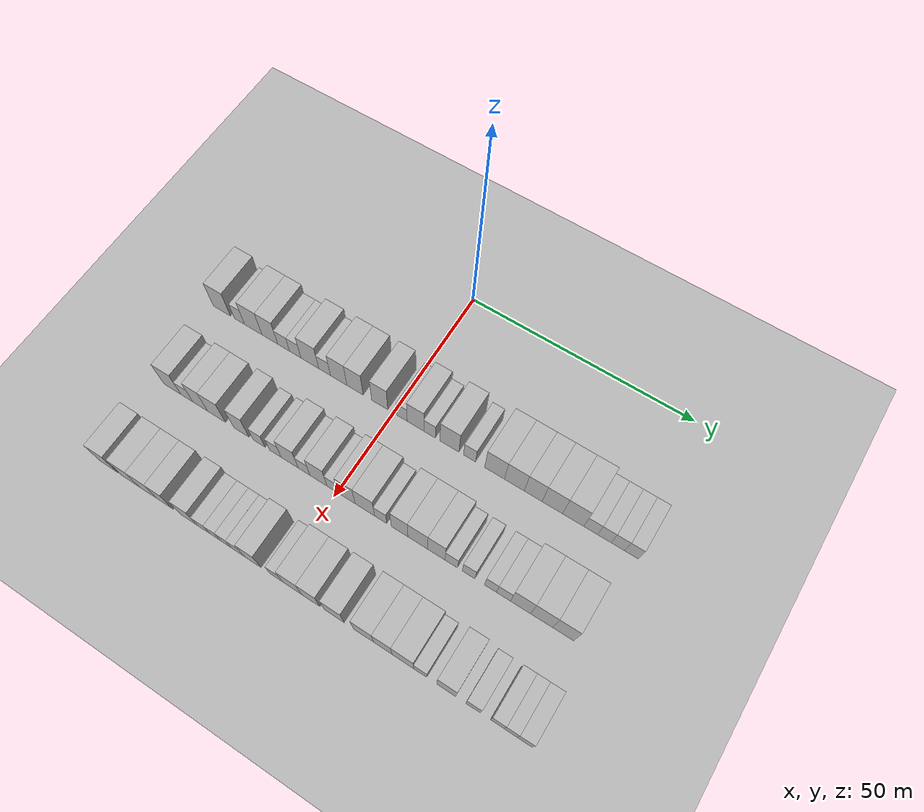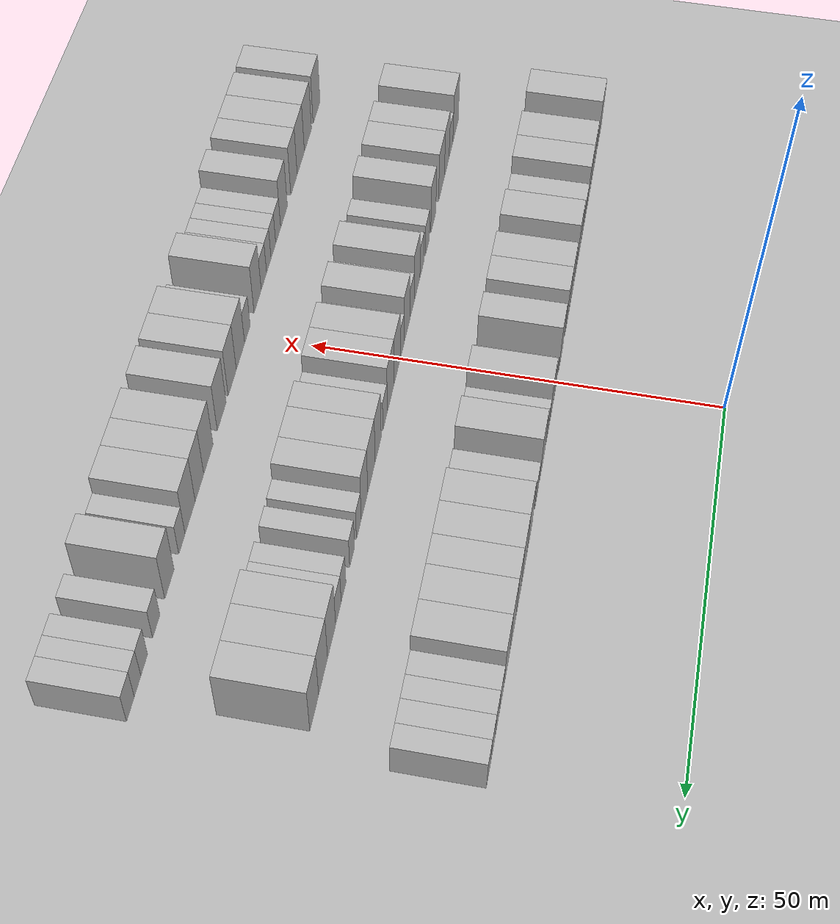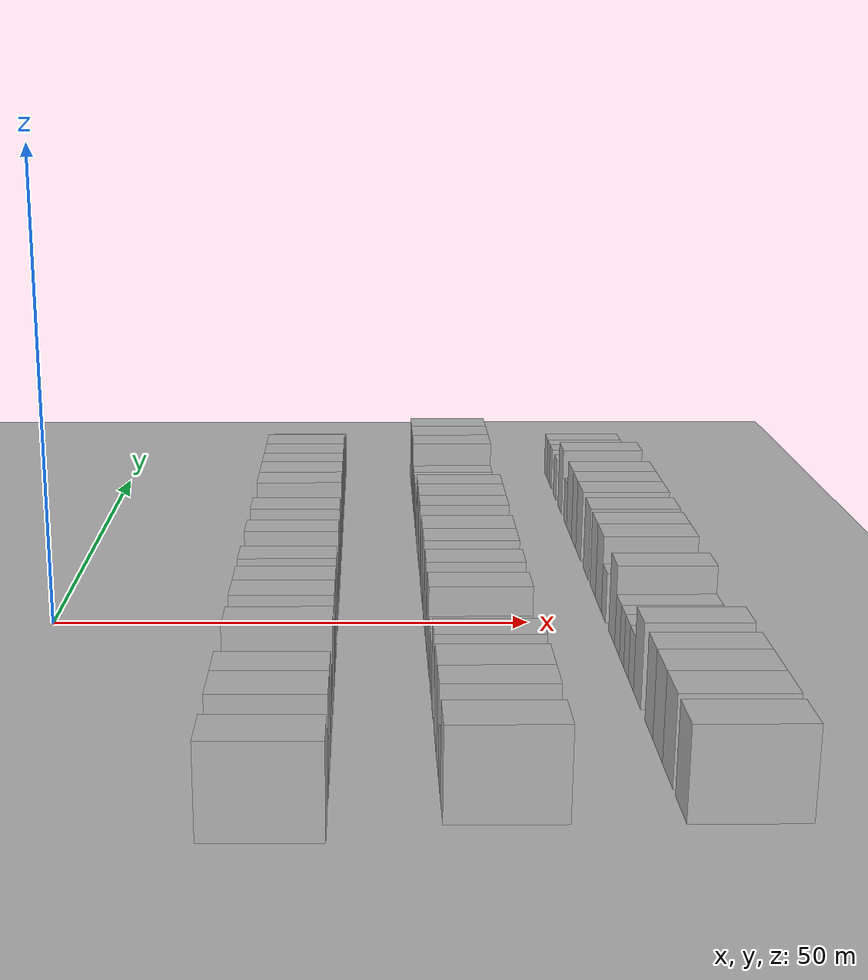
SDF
<sdf version="1.6">
 <world name="default">
  <include><name>ground_plane_1</name><uri>model://HANNAS_ground_plane</uri></include>
  <include>
   <name>ground_plane_2</name>
   <uri>model://HANNAS_ground_plane</uri>
   <pose>100 0 0  0 0 0</pose>
  </include>
  <model name="building_49">
   <static>1</static>
   <pose>25.0000 -41.4248 0 0.000000 0.000000 0.000000</pose>
   <link name="link">
    <pose>0 0 4.50 0 0 0</pose>
    <collision name="collision"><geometry><box><size>10.0000 4.3678 9.0000</size></box></geometry></collision>
    <visual name="visual">
     <cast_shadows>0</cast_shadows>
     <geometry><box><size>10.0000 4.3678 9.0000</size></box></geometry>
     <material>
      <script>
       <uri>model://HANNAS_wall/materials/scripts</uri>
       <uri>model://HANNAS_wall/materials/textures</uri>
       <name>vrc/HANNAS_wall</name>
      </script>
     </material>
    </visual>
   </link>
  </model>
  <model name="building_50">
   <static>1</static>
   <pose>25.0000 -36.9635 0 0.000000 0.000000 0.000000</pose>
   <link name="link">
    <pose>0 0 3.00 0 0 0</pose>
    <collision name="collision"><geometry><box><size>10.0000 2.5547 6.0000</size></box></geometry></collision>
    <visual name="visual">
     <cast_shadows>0</cast_shadows>
     <geometry><box><size>10.0000 2.5547 6.0000</size></box></geometry>
     <material>
      <script>
       <uri>model://HANNAS_wall/materials/scripts</uri>
       <uri>model://HANNAS_wall/materials/textures</uri>
       <name>vrc/HANNAS_wall</name>
      </script>
     </material>
    </visual>
   </link>
  </model>
  <model name="building_51">
   <static>1</static>
   <pose>25.0000 -33.5015 0 0.000000 0.000000 0.000000</pose>
   <link name="link">
    <pose>0 0 4.50 0 0 0</pose>
    <collision name="collision"><geometry><box><size>10.0000 4.3692 9.0000</size></box></geometry></collision>
    <visual name="visual">
     <cast_shadows>0</cast_shadows>
     <geometry><box><size>10.0000 4.3692 9.0000</size></box></geometry>
     <material>
      <script>
       <uri>model://HANNAS_wall/materials/scripts</uri>
       <uri>model://HANNAS_wall/materials/textures</uri>
       <name>vrc/HANNAS_wall</name>
      </script>
     </material>
    </visual>
   </link>
  </model>
  <model name="building_52">
   <static>1</static>
   <pose>25.0000 -29.3595 0 0.000000 0.000000 0.000000</pose>
   <link name="link">
    <pose>0 0 4.50 0 0 0</pose>
    <collision name="collision"><geometry><box><size>10.0000 3.9149 9.0000</size></box></geometry></collision>
    <visual name="visual">
     <cast_shadows>0</cast_shadows>
     <geometry><box><size>10.0000 3.9149 9.0000</size></box></geometry>
     <material>
      <script>
       <uri>model://HANNAS_wall/materials/scripts</uri>
       <uri>model://HANNAS_wall/materials/textures</uri>
       <name>vrc/HANNAS_wall</name>
      </script>
     </material>
    </visual>
   </link>
  </model>
  <model name="building_53">
   <static>1</static>
   <pose>25.0000 -25.9612 0 0.000000 0.000000 0.000000</pose>
   <link name="link">
    <pose>0 0 3.00 0 0 0</pose>
    <collision name="collision"><geometry><box><size>10.0000 2.8816 6.0000</size></box></geometry></collision>
    <visual name="visual">
     <cast_shadows>0</cast_shadows>
     <geometry><box><size>10.0000 2.8816 6.0000</size></box></geometry>
     <material>
      <script>
       <uri>model://HANNAS_wall/materials/scripts</uri>
       <uri>model://HANNAS_wall/materials/textures</uri>
       <name>vrc/HANNAS_wall</name>
      </script>
     </material>
    </visual>
   </link>
  </model>
  <model name="building_54">
   <static>1</static>
   <pose>25.0000 -23.1204 0 0.000000 0.000000 0.000000</pose>
   <link name="link">
    <pose>0 0 3.00 0 0 0</pose>
    <collision name="collision"><geometry><box><size>10.0000 2.8000 6.0000</size></box></geometry></collision>
    <visual name="visual">
     <cast_shadows>0</cast_shadows>
     <geometry><box><size>10.0000 2.8000 6.0000</size></box></geometry>
     <material>
      <script>
       <uri>model://HANNAS_wall/materials/scripts</uri>
       <uri>model://HANNAS_wall/materials/textures</uri>
       <name>vrc/HANNAS_wall</name>
      </script>
     </material>
    </visual>
   </link>
  </model>
  <model name="building_55">
   <static>1</static>
   <pose>25.0000 -19.5731 0 0.000000 0.000000 0.000000</pose>
   <link name="link">
    <pose>0 0 4.50 0 0 0</pose>
    <collision name="collision"><geometry><box><size>10.0000 4.2946 9.0000</size></box></geometry></collision>
    <visual name="visual">
     <cast_shadows>0</cast_shadows>
     <geometry><box><size>10.0000 4.2946 9.0000</size></box></geometry>
     <material>
      <script>
       <uri>model://HANNAS_wall/materials/scripts</uri>
       <uri>model://HANNAS_wall/materials/textures</uri>
       <name>vrc/HANNAS_wall</name>
      </script>
     </material>
    </visual>
   </link>
  </model>
  <model name="building_56">
   <static>1</static>
   <pose>25.0000 -16.0325 0 0.000000 0.000000 0.000000</pose>
   <link name="link">
    <pose>0 0 3.00 0 0 0</pose>
    <collision name="collision"><geometry><box><size>10.0000 2.7866 6.0000</size></box></geometry></collision>
    <visual name="visual">
     <cast_shadows>0</cast_shadows>
     <geometry><box><size>10.0000 2.7866 6.0000</size></box></geometry>
     <material>
      <script>
       <uri>model://HANNAS_wall/materials/scripts</uri>
       <uri>model://HANNAS_wall/materials/textures</uri>
       <name>vrc/HANNAS_wall</name>
      </script>
     </material>
    </visual>
   </link>
  </model>
  <model name="building_57">
   <static>1</static>
   <pose>25.0000 -12.6746 0 0.000000 0.000000 0.000000</pose>
   <link name="link">
    <pose>0 0 4.50 0 0 0</pose>
    <collision name="collision"><geometry><box><size>10.0000 3.9293 9.0000</size></box></geometry></collision>
    <visual name="visual">
     <cast_shadows>0</cast_shadows>
     <geometry><box><size>10.0000 3.9293 9.0000</size></box></geometry>
     <material>
      <script>
       <uri>model://HANNAS_wall/materials/scripts</uri>
       <uri>model://HANNAS_wall/materials/textures</uri>
       <name>vrc/HANNAS_wall</name>
      </script>
     </material>
    </visual>
   </link>
  </model>
  <model name="building_58">
   <static>1</static>
   <pose>25.0000 -8.8036 0 0.000000 0.000000 0.000000</pose>
   <link name="link">
    <pose>0 0 4.50 0 0 0</pose>
    <collision name="collision"><geometry><box><size>10.0000 3.8127 9.0000</size></box></geometry></collision>
    <visual name="visual">
     <cast_shadows>0</cast_shadows>
     <geometry><box><size>10.0000 3.8127 9.0000</size></box></geometry>
     <material>
      <script>
       <uri>model://HANNAS_wall/materials/scripts</uri>
       <uri>model://HANNAS_wall/materials/textures</uri>
       <name>vrc/HANNAS_wall</name>
      </script>
     </material>
    </visual>
   </link>
  </model>
  <model name="building_59">
   <static>1</static>
   <pose>25.0000 -3.0187 0 0.000000 0.000000 0.000000</pose>
   <link name="link">
    <pose>0 0 4.50 0 0 0</pose>
    <collision name="collision"><geometry><box><size>10.0000 3.7571 9.0000</size></box></geometry></collision>
    <visual name="visual">
     <cast_shadows>0</cast_shadows>
     <geometry><box><size>10.0000 3.7571 9.0000</size></box></geometry>
     <material>
      <script>
       <uri>model://HANNAS_wall/materials/scripts</uri>
       <uri>model://HANNAS_wall/materials/textures</uri>
       <name>vrc/HANNAS_wall</name>
      </script>
     </material>
    </visual>
   </link>
  </model>
  <model name="building_60">
   <static>1</static>
   <pose>25.0000 2.0747 0 0.000000 0.000000 0.000000</pose>
   <link name="link">
    <pose>0 0 3.00 0 0 0</pose>
    <collision name="collision"><geometry><box><size>10.0000 2.4297 6.0000</size></box></geometry></collision>
    <visual name="visual">
     <cast_shadows>0</cast_shadows>
     <geometry><box><size>10.0000 2.4297 6.0000</size></box></geometry>
     <material>
      <script>
       <uri>model://HANNAS_wall/materials/scripts</uri>
       <uri>model://HANNAS_wall/materials/textures</uri>
       <name>vrc/HANNAS_wall</name>
      </script>
     </material>
    </visual>
   </link>
  </model>
  <model name="building_61">
   <static>1</static>
   <pose>25.0000 5.1758 0 0.000000 0.000000 0.000000</pose>
   <link name="link">
    <pose>0 0 4.50 0 0 0</pose>
    <collision name="collision"><geometry><box><size>10.0000 3.7725 9.0000</size></box></geometry></collision>
    <visual name="visual">
     <cast_shadows>0</cast_shadows>
     <geometry><box><size>10.0000 3.7725 9.0000</size></box></geometry>
     <material>
      <script>
       <uri>model://HANNAS_wall/materials/scripts</uri>
       <uri>model://HANNAS_wall/materials/textures</uri>
       <name>vrc/HANNAS_wall</name>
      </script>
     </material>
    </visual>
   </link>
  </model>
  <model name="building_62">
   <static>1</static>
   <pose>25.0000 8.3747 0 0.000000 0.000000 0.000000</pose>
   <link name="link">
    <pose>0 0 3.00 0 0 0</pose>
    <collision name="collision"><geometry><box><size>10.0000 2.6254 6.0000</size></box></geometry></collision>
    <visual name="visual">
     <cast_shadows>0</cast_shadows>
     <geometry><box><size>10.0000 2.6254 6.0000</size></box></geometry>
     <material>
      <script>
       <uri>model://HANNAS_wall/materials/scripts</uri>
       <uri>model://HANNAS_wall/materials/textures</uri>
       <name>vrc/HANNAS_wall</name>
      </script>
     </material>
    </visual>
   </link>
  </model>
  <model name="building_63">
   <static>1</static>
   <pose>25.0000 12.8295 0 0.000000 0.000000 0.000000</pose>
   <link name="link">
    <pose>0 0 4.50 0 0 0</pose>
    <collision name="collision"><geometry><box><size>10.0000 4.2841 9.0000</size></box></geometry></collision>
    <visual name="visual">
     <cast_shadows>0</cast_shadows>
     <geometry><box><size>10.0000 4.2841 9.0000</size></box></geometry>
     <material>
      <script>
       <uri>model://HANNAS_wall/materials/scripts</uri>
       <uri>model://HANNAS_wall/materials/textures</uri>
       <name>vrc/HANNAS_wall</name>
      </script>
     </material>
    </visual>
   </link>
  </model>
  <model name="building_64">
   <static>1</static>
   <pose>25.0000 17.3083 0 0.000000 0.000000 0.000000</pose>
   <link name="link">
    <pose>0 0 3.00 0 0 0</pose>
    <collision name="collision"><geometry><box><size>10.0000 2.6735 6.0000</size></box></geometry></collision>
    <visual name="visual">
     <cast_shadows>0</cast_shadows>
     <geometry><box><size>10.0000 2.6735 6.0000</size></box></geometry>
     <material>
      <script>
       <uri>model://HANNAS_wall/materials/scripts</uri>
       <uri>model://HANNAS_wall/materials/textures</uri>
       <name>vrc/HANNAS_wall</name>
      </script>
     </material>
    </visual>
   </link>
  </model>
  <model name="building_65">
   <static>1</static>
   <pose>25.0000 22.8115 0 0.000000 0.000000 0.000000</pose>
   <link name="link">
    <pose>0 0 4.50 0 0 0</pose>
    <collision name="collision"><geometry><box><size>10.0000 4.3328 9.0000</size></box></geometry></collision>
    <visual name="visual">
     <cast_shadows>0</cast_shadows>
     <geometry><box><size>10.0000 4.3328 9.0000</size></box></geometry>
     <material>
      <script>
       <uri>model://HANNAS_wall/materials/scripts</uri>
       <uri>model://HANNAS_wall/materials/textures</uri>
       <name>vrc/HANNAS_wall</name>
      </script>
     </material>
    </visual>
   </link>
  </model>
  <model name="building_66">
   <static>1</static>
   <pose>25.0000 27.1221 0 0.000000 0.000000 0.000000</pose>
   <link name="link">
    <pose>0 0 4.50 0 0 0</pose>
    <collision name="collision"><geometry><box><size>10.0000 4.2884 9.0000</size></box></geometry></collision>
    <visual name="visual">
     <cast_shadows>0</cast_shadows>
     <geometry><box><size>10.0000 4.2884 9.0000</size></box></geometry>
     <material>
      <script>
       <uri>model://HANNAS_wall/materials/scripts</uri>
       <uri>model://HANNAS_wall/materials/textures</uri>
       <name>vrc/HANNAS_wall</name>
      </script>
     </material>
    </visual>
   </link>
  </model>
  <model name="building_67">
   <static>1</static>
   <pose>25.0000 31.1774 0 0.000000 0.000000 0.000000</pose>
   <link name="link">
    <pose>0 0 4.50 0 0 0</pose>
    <collision name="collision"><geometry><box><size>10.0000 3.8222 9.0000</size></box></geometry></collision>
    <visual name="visual">
     <cast_shadows>0</cast_shadows>
     <geometry><box><size>10.0000 3.8222 9.0000</size></box></geometry>
     <material>
      <script>
       <uri>model://HANNAS_wall/materials/scripts</uri>
       <uri>model://HANNAS_wall/materials/textures</uri>
       <name>vrc/HANNAS_wall</name>
      </script>
     </material>
    </visual>
   </link>
  </model>
  <model name="building_68">
   <static>1</static>
   <pose>25.0000 35.2563 0 0.000000 0.000000 0.000000</pose>
   <link name="link">
    <pose>0 0 4.50 0 0 0</pose>
    <collision name="collision"><geometry><box><size>10.0000 4.3356 9.0000</size></box></geometry></collision>
    <visual name="visual">
     <cast_shadows>0</cast_shadows>
     <geometry><box><size>10.0000 4.3356 9.0000</size></box></geometry>
     <material>
      <script>
       <uri>model://HANNAS_wall/materials/scripts</uri>
       <uri>model://HANNAS_wall/materials/textures</uri>
       <name>vrc/HANNAS_wall</name>
      </script>
     </material>
    </visual>
   </link>
  </model>
  <model name="building_69">
   <static>1</static>
   <pose>25.0000 39.6398 0 0.000000 0.000000 0.000000</pose>
   <link name="link">
    <pose>0 0 4.50 0 0 0</pose>
    <collision name="collision"><geometry><box><size>10.0000 4.4315 9.0000</size></box></geometry></collision>
    <visual name="visual">
     <cast_shadows>0</cast_shadows>
     <geometry><box><size>10.0000 4.4315 9.0000</size></box></geometry>
     <material>
      <script>
       <uri>model://HANNAS_wall/materials/scripts</uri>
       <uri>model://HANNAS_wall/materials/textures</uri>
       <name>vrc/HANNAS_wall</name>
      </script>
     </material>
    </visual>
   </link>
  </model>
  <model name="building_70">
   <static>1</static>
   <pose>25.0000 43.2824 0 0.000000 0.000000 0.000000</pose>
   <link name="link">
    <pose>0 0 3.00 0 0 0</pose>
    <collision name="collision"><geometry><box><size>10.0000 2.8536 6.0000</size></box></geometry></collision>
    <visual name="visual">
     <cast_shadows>0</cast_shadows>
     <geometry><box><size>10.0000 2.8536 6.0000</size></box></geometry>
     <material>
      <script>
       <uri>model://HANNAS_wall/materials/scripts</uri>
       <uri>model://HANNAS_wall/materials/textures</uri>
       <name>vrc/HANNAS_wall</name>
      </script>
     </material>
    </visual>
   </link>
  </model>
  <model name="building_71">
   <static>1</static>
   <pose>25.0000 46.0949 0 0.000000 0.000000 0.000000</pose>
   <link name="link">
    <pose>0 0 3.00 0 0 0</pose>
    <collision name="collision"><geometry><box><size>10.0000 2.7713 6.0000</size></box></geometry></collision>
    <visual name="visual">
     <cast_shadows>0</cast_shadows>
     <geometry><box><size>10.0000 2.7713 6.0000</size></box></geometry>
     <material>
      <script>
       <uri>model://HANNAS_wall/materials/scripts</uri>
       <uri>model://HANNAS_wall/materials/textures</uri>
       <name>vrc/HANNAS_wall</name>
      </script>
     </material>
    </visual>
   </link>
  </model>
  <model name="building_72">
   <static>1</static>
   <pose>25.0000 48.8805 0 0.000000 0.000000 0.000000</pose>
   <link name="link">
    <pose>0 0 3.00 0 0 0</pose>
    <collision name="collision"><geometry><box><size>10.0000 2.8001 6.0000</size></box></geometry></collision>
    <visual name="visual">
     <cast_shadows>0</cast_shadows>
     <geometry><box><size>10.0000 2.8001 6.0000</size></box></geometry>
     <material>
      <script>
       <uri>model://HANNAS_wall/materials/scripts</uri>
       <uri>model://HANNAS_wall/materials/textures</uri>
       <name>vrc/HANNAS_wall</name>
      </script>
     </material>
    </visual>
   </link>
  </model>
  <model name="building_73">
   <static>1</static>
   <pose>25.0000 51.6680 0 0.000000 0.000000 0.000000</pose>
   <link name="link">
    <pose>0 0 3.00 0 0 0</pose>
    <collision name="collision"><geometry><box><size>10.0000 2.7749 6.0000</size></box></geometry></collision>
    <visual name="visual">
     <cast_shadows>0</cast_shadows>
     <geometry><box><size>10.0000 2.7749 6.0000</size></box></geometry>
     <material>
      <script>
       <uri>model://HANNAS_wall/materials/scripts</uri>
       <uri>model://HANNAS_wall/materials/textures</uri>
       <name>vrc/HANNAS_wall</name>
      </script>
     </material>
    </visual>
   </link>
  </model>
  <model name="building_169">
   <static>1</static>
   <pose>44.0000 -38.8881 0 0.000000 0.000000 0.000000</pose>
   <link name="link">
    <pose>0 0 4.50 0 0 0</pose>
    <collision name="collision"><geometry><box><size>10.0000 4.2812 9.0000</size></box></geometry></collision>
    <visual name="visual">
     <cast_shadows>0</cast_shadows>
     <geometry><box><size>10.0000 4.2812 9.0000</size></box></geometry>
     <material>
      <script>
       <uri>model://HANNAS_wall/materials/scripts</uri>
       <uri>model://HANNAS_wall/materials/textures</uri>
       <name>vrc/HANNAS_wall</name>
      </script>
     </material>
    </visual>
   </link>
  </model>
  <model name="building_170">
   <static>1</static>
   <pose>44.0000 -35.2910 0 0.000000 0.000000 0.000000</pose>
   <link name="link">
    <pose>0 0 3.00 0 0 0</pose>
    <collision name="collision"><geometry><box><size>10.0000 2.9130 6.0000</size></box></geometry></collision>
    <visual name="visual">
     <cast_shadows>0</cast_shadows>
     <geometry><box><size>10.0000 2.9130 6.0000</size></box></geometry>
     <material>
      <script>
       <uri>model://HANNAS_wall/materials/scripts</uri>
       <uri>model://HANNAS_wall/materials/textures</uri>
       <name>vrc/HANNAS_wall</name>
      </script>
     </material>
    </visual>
   </link>
  </model>
  <model name="building_171">
   <static>1</static>
   <pose>44.0000 -32.0256 0 0.000000 0.000000 0.000000</pose>
   <link name="link">
    <pose>0 0 4.50 0 0 0</pose>
    <collision name="collision"><geometry><box><size>10.0000 3.6177 9.0000</size></box></geometry></collision>
    <visual name="visual">
     <cast_shadows>0</cast_shadows>
     <geometry><box><size>10.0000 3.6177 9.0000</size></box></geometry>
     <material>
      <script>
       <uri>model://HANNAS_wall/materials/scripts</uri>
       <uri>model://HANNAS_wall/materials/textures</uri>
       <name>vrc/HANNAS_wall</name>
      </script>
     </material>
    </visual>
   </link>
  </model>
  <model name="building_172">
   <static>1</static>
   <pose>44.0000 -28.0614 0 0.000000 0.000000 0.000000</pose>
   <link name="link">
    <pose>0 0 4.50 0 0 0</pose>
    <collision name="collision"><geometry><box><size>10.0000 4.3107 9.0000</size></box></geometry></collision>
    <visual name="visual">
     <cast_shadows>0</cast_shadows>
     <geometry><box><size>10.0000 4.3107 9.0000</size></box></geometry>
     <material>
      <script>
       <uri>model://HANNAS_wall/materials/scripts</uri>
       <uri>model://HANNAS_wall/materials/textures</uri>
       <name>vrc/HANNAS_wall</name>
      </script>
     </material>
    </visual>
   </link>
  </model>
  <model name="building_173">
   <static>1</static>
   <pose>44.0000 -22.1002 0 0.000000 0.000000 0.000000</pose>
   <link name="link">
    <pose>0 0 4.50 0 0 0</pose>
    <collision name="collision"><geometry><box><size>10.0000 3.6116 9.0000</size></box></geometry></collision>
    <visual name="visual">
     <cast_shadows>0</cast_shadows>
     <geometry><box><size>10.0000 3.6116 9.0000</size></box></geometry>
     <material>
      <script>
       <uri>model://HANNAS_wall/materials/scripts</uri>
       <uri>model://HANNAS_wall/materials/textures</uri>
       <name>vrc/HANNAS_wall</name>
      </script>
     </material>
    </visual>
   </link>
  </model>
  <model name="building_174">
   <static>1</static>
   <pose>44.0000 -17.8768 0 0.000000 0.000000 0.000000</pose>
   <link name="link">
    <pose>0 0 3.00 0 0 0</pose>
    <collision name="collision"><geometry><box><size>10.0000 2.8351 6.0000</size></box></geometry></collision>
    <visual name="visual">
     <cast_shadows>0</cast_shadows>
     <geometry><box><size>10.0000 2.8351 6.0000</size></box></geometry>
     <material>
      <script>
       <uri>model://HANNAS_wall/materials/scripts</uri>
       <uri>model://HANNAS_wall/materials/textures</uri>
       <name>vrc/HANNAS_wall</name>
      </script>
     </material>
    </visual>
   </link>
  </model>
  <model name="building_175">
   <static>1</static>
   <pose>44.0000 -14.0689 0 0.000000 0.000000 0.000000</pose>
   <link name="link">
    <pose>0 0 3.00 0 0 0</pose>
    <collision name="collision"><geometry><box><size>10.0000 2.7807 6.0000</size></box></geometry></collision>
    <visual name="visual">
     <cast_shadows>0</cast_shadows>
     <geometry><box><size>10.0000 2.7807 6.0000</size></box></geometry>
     <material>
      <script>
       <uri>model://HANNAS_wall/materials/scripts</uri>
       <uri>model://HANNAS_wall/materials/textures</uri>
       <name>vrc/HANNAS_wall</name>
      </script>
     </material>
    </visual>
   </link>
  </model>
  <model name="building_176">
   <static>1</static>
   <pose>44.0000 -10.7040 0 0.000000 0.000000 0.000000</pose>
   <link name="link">
    <pose>0 0 4.50 0 0 0</pose>
    <collision name="collision"><geometry><box><size>10.0000 3.9491 9.0000</size></box></geometry></collision>
    <visual name="visual">
     <cast_shadows>0</cast_shadows>
     <geometry><box><size>10.0000 3.9491 9.0000</size></box></geometry>
     <material>
      <script>
       <uri>model://HANNAS_wall/materials/scripts</uri>
       <uri>model://HANNAS_wall/materials/textures</uri>
       <name>vrc/HANNAS_wall</name>
      </script>
     </material>
    </visual>
   </link>
  </model>
  <model name="building_177">
   <static>1</static>
   <pose>44.0000 -7.3802 0 0.000000 0.000000 0.000000</pose>
   <link name="link">
    <pose>0 0 3.00 0 0 0</pose>
    <collision name="collision"><geometry><box><size>10.0000 2.6985 6.0000</size></box></geometry></collision>
    <visual name="visual">
     <cast_shadows>0</cast_shadows>
     <geometry><box><size>10.0000 2.6985 6.0000</size></box></geometry>
     <material>
      <script>
       <uri>model://HANNAS_wall/materials/scripts</uri>
       <uri>model://HANNAS_wall/materials/textures</uri>
       <name>vrc/HANNAS_wall</name>
      </script>
     </material>
    </visual>
   </link>
  </model>
  <model name="building_178">
   <static>1</static>
   <pose>44.0000 -4.1019 0 0.000000 0.000000 0.000000</pose>
   <link name="link">
    <pose>0 0 4.50 0 0 0</pose>
    <collision name="collision"><geometry><box><size>10.0000 3.8581 9.0000</size></box></geometry></collision>
    <visual name="visual">
     <cast_shadows>0</cast_shadows>
     <geometry><box><size>10.0000 3.8581 9.0000</size></box></geometry>
     <material>
      <script>
       <uri>model://HANNAS_wall/materials/scripts</uri>
       <uri>model://HANNAS_wall/materials/textures</uri>
       <name>vrc/HANNAS_wall</name>
      </script>
     </material>
    </visual>
   </link>
  </model>
  <model name="building_179">
   <static>1</static>
   <pose>44.0000 -0.9028 0 0.000000 0.000000 0.000000</pose>
   <link name="link">
    <pose>0 0 3.00 0 0 0</pose>
    <collision name="collision"><geometry><box><size>10.0000 2.5403 6.0000</size></box></geometry></collision>
    <visual name="visual">
     <cast_shadows>0</cast_shadows>
     <geometry><box><size>10.0000 2.5403 6.0000</size></box></geometry>
     <material>
      <script>
       <uri>model://HANNAS_wall/materials/scripts</uri>
       <uri>model://HANNAS_wall/materials/textures</uri>
       <name>vrc/HANNAS_wall</name>
      </script>
     </material>
    </visual>
   </link>
  </model>
  <model name="building_180">
   <static>1</static>
   <pose>44.0000 2.2848 0 0.000000 0.000000 0.000000</pose>
   <link name="link">
    <pose>0 0 4.50 0 0 0</pose>
    <collision name="collision"><geometry><box><size>10.0000 3.8349 9.0000</size></box></geometry></collision>
    <visual name="visual">
     <cast_shadows>0</cast_shadows>
     <geometry><box><size>10.0000 3.8349 9.0000</size></box></geometry>
     <material>
      <script>
       <uri>model://HANNAS_wall/materials/scripts</uri>
       <uri>model://HANNAS_wall/materials/textures</uri>
       <name>vrc/HANNAS_wall</name>
      </script>
     </material>
    </visual>
   </link>
  </model>
  <model name="building_181">
   <static>1</static>
   <pose>44.0000 6.3577 0 0.000000 0.000000 0.000000</pose>
   <link name="link">
    <pose>0 0 4.50 0 0 0</pose>
    <collision name="collision"><geometry><box><size>10.0000 4.3108 9.0000</size></box></geometry></collision>
    <visual name="visual">
     <cast_shadows>0</cast_shadows>
     <geometry><box><size>10.0000 4.3108 9.0000</size></box></geometry>
     <material>
      <script>
       <uri>model://HANNAS_wall/materials/scripts</uri>
       <uri>model://HANNAS_wall/materials/textures</uri>
       <name>vrc/HANNAS_wall</name>
      </script>
     </material>
    </visual>
   </link>
  </model>
  <model name="building_182">
   <static>1</static>
   <pose>44.0000 9.8532 0 0.000000 0.000000 0.000000</pose>
   <link name="link">
    <pose>0 0 3.00 0 0 0</pose>
    <collision name="collision"><geometry><box><size>10.0000 2.6802 6.0000</size></box></geometry></collision>
    <visual name="visual">
     <cast_shadows>0</cast_shadows>
     <geometry><box><size>10.0000 2.6802 6.0000</size></box></geometry>
     <material>
      <script>
       <uri>model://HANNAS_wall/materials/scripts</uri>
       <uri>model://HANNAS_wall/materials/textures</uri>
       <name>vrc/HANNAS_wall</name>
      </script>
     </material>
    </visual>
   </link>
  </model>
  <model name="building_183">
   <static>1</static>
   <pose>44.0000 13.9950 0 0.000000 0.000000 0.000000</pose>
   <link name="link">
    <pose>0 0 4.50 0 0 0</pose>
    <collision name="collision"><geometry><box><size>10.0000 3.6034 9.0000</size></box></geometry></collision>
    <visual name="visual">
     <cast_shadows>0</cast_shadows>
     <geometry><box><size>10.0000 3.6034 9.0000</size></box></geometry>
     <material>
      <script>
       <uri>model://HANNAS_wall/materials/scripts</uri>
       <uri>model://HANNAS_wall/materials/textures</uri>
       <name>vrc/HANNAS_wall</name>
      </script>
     </material>
    </visual>
   </link>
  </model>
  <model name="building_184">
   <static>1</static>
   <pose>44.0000 17.9405 0 0.000000 0.000000 0.000000</pose>
   <link name="link">
    <pose>0 0 4.50 0 0 0</pose>
    <collision name="collision"><geometry><box><size>10.0000 4.2877 9.0000</size></box></geometry></collision>
    <visual name="visual">
     <cast_shadows>0</cast_shadows>
     <geometry><box><size>10.0000 4.2877 9.0000</size></box></geometry>
     <material>
      <script>
       <uri>model://HANNAS_wall/materials/scripts</uri>
       <uri>model://HANNAS_wall/materials/textures</uri>
       <name>vrc/HANNAS_wall</name>
      </script>
     </material>
    </visual>
   </link>
  </model>
  <model name="building_185">
   <static>1</static>
   <pose>44.0000 21.9222 0 0.000000 0.000000 0.000000</pose>
   <link name="link">
    <pose>0 0 4.50 0 0 0</pose>
    <collision name="collision"><geometry><box><size>10.0000 3.6757 9.0000</size></box></geometry></collision>
    <visual name="visual">
     <cast_shadows>0</cast_shadows>
     <geometry><box><size>10.0000 3.6757 9.0000</size></box></geometry>
     <material>
      <script>
       <uri>model://HANNAS_wall/materials/scripts</uri>
       <uri>model://HANNAS_wall/materials/textures</uri>
       <name>vrc/HANNAS_wall</name>
      </script>
     </material>
    </visual>
   </link>
  </model>
  <model name="building_186">
   <static>1</static>
   <pose>44.0000 25.0893 0 0.000000 0.000000 0.000000</pose>
   <link name="link">
    <pose>0 0 3.00 0 0 0</pose>
    <collision name="collision"><geometry><box><size>10.0000 2.6586 6.0000</size></box></geometry></collision>
    <visual name="visual">
     <cast_shadows>0</cast_shadows>
     <geometry><box><size>10.0000 2.6586 6.0000</size></box></geometry>
     <material>
      <script>
       <uri>model://HANNAS_wall/materials/scripts</uri>
       <uri>model://HANNAS_wall/materials/textures</uri>
       <name>vrc/HANNAS_wall</name>
      </script>
     </material>
    </visual>
   </link>
  </model>
  <model name="building_187">
   <static>1</static>
   <pose>44.0000 28.7602 0 0.000000 0.000000 0.000000</pose>
   <link name="link">
    <pose>0 0 3.00 0 0 0</pose>
    <collision name="collision"><geometry><box><size>10.0000 2.6832 6.0000</size></box></geometry></collision>
    <visual name="visual">
     <cast_shadows>0</cast_shadows>
     <geometry><box><size>10.0000 2.6832 6.0000</size></box></geometry>
     <material>
      <script>
       <uri>model://HANNAS_wall/materials/scripts</uri>
       <uri>model://HANNAS_wall/materials/textures</uri>
       <name>vrc/HANNAS_wall</name>
      </script>
     </material>
    </visual>
   </link>
  </model>
  <model name="building_188">
   <static>1</static>
   <pose>44.0000 33.3548 0 0.000000 0.000000 0.000000</pose>
   <link name="link">
    <pose>0 0 3.00 0 0 0</pose>
    <collision name="collision"><geometry><box><size>10.0000 2.5059 6.0000</size></box></geometry></collision>
    <visual name="visual">
     <cast_shadows>0</cast_shadows>
     <geometry><box><size>10.0000 2.5059 6.0000</size></box></geometry>
     <material>
      <script>
       <uri>model://HANNAS_wall/materials/scripts</uri>
       <uri>model://HANNAS_wall/materials/textures</uri>
       <name>vrc/HANNAS_wall</name>
      </script>
     </material>
    </visual>
   </link>
  </model>
  <model name="building_189">
   <static>1</static>
   <pose>44.0000 36.0466 0 0.000000 0.000000 0.000000</pose>
   <link name="link">
    <pose>0 0 3.00 0 0 0</pose>
    <collision name="collision"><geometry><box><size>10.0000 2.8777 6.0000</size></box></geometry></collision>
    <visual name="visual">
     <cast_shadows>0</cast_shadows>
     <geometry><box><size>10.0000 2.8777 6.0000</size></box></geometry>
     <material>
      <script>
       <uri>model://HANNAS_wall/materials/scripts</uri>
       <uri>model://HANNAS_wall/materials/textures</uri>
       <name>vrc/HANNAS_wall</name>
      </script>
     </material>
    </visual>
   </link>
  </model>
  <model name="building_190">
   <static>1</static>
   <pose>44.0000 39.5406 0 0.000000 0.000000 0.000000</pose>
   <link name="link">
    <pose>0 0 4.50 0 0 0</pose>
    <collision name="collision"><geometry><box><size>10.0000 4.1103 9.0000</size></box></geometry></collision>
    <visual name="visual">
     <cast_shadows>0</cast_shadows>
     <geometry><box><size>10.0000 4.1103 9.0000</size></box></geometry>
     <material>
      <script>
       <uri>model://HANNAS_wall/materials/scripts</uri>
       <uri>model://HANNAS_wall/materials/textures</uri>
       <name>vrc/HANNAS_wall</name>
      </script>
     </material>
    </visual>
   </link>
  </model>
  <model name="building_191">
   <static>1</static>
   <pose>44.0000 43.8081 0 0.000000 0.000000 0.000000</pose>
   <link name="link">
    <pose>0 0 4.50 0 0 0</pose>
    <collision name="collision"><geometry><box><size>10.0000 4.4249 9.0000</size></box></geometry></collision>
    <visual name="visual">
     <cast_shadows>0</cast_shadows>
     <geometry><box><size>10.0000 4.4249 9.0000</size></box></geometry>
     <material>
      <script>
       <uri>model://HANNAS_wall/materials/scripts</uri>
       <uri>model://HANNAS_wall/materials/textures</uri>
       <name>vrc/HANNAS_wall</name>
      </script>
     </material>
    </visual>
   </link>
  </model>
  <model name="building_192">
   <static>1</static>
   <pose>44.0000 48.1383 0 0.000000 0.000000 0.000000</pose>
   <link name="link">
    <pose>0 0 4.50 0 0 0</pose>
    <collision name="collision"><geometry><box><size>10.0000 4.2355 9.0000</size></box></geometry></collision>
    <visual name="visual">
     <cast_shadows>0</cast_shadows>
     <geometry><box><size>10.0000 4.2355 9.0000</size></box></geometry>
     <material>
      <script>
       <uri>model://HANNAS_wall/materials/scripts</uri>
       <uri>model://HANNAS_wall/materials/textures</uri>
       <name>vrc/HANNAS_wall</name>
      </script>
     </material>
    </visual>
   </link>
  </model>
  <model name="building_290">
   <static>1</static>
   <pose>63.0000 -38.8346 0 0.000000 0.000000 0.000000</pose>
   <link name="link">
    <pose>0 0 4.50 0 0 0</pose>
    <collision name="collision"><geometry><box><size>10.0000 4.2926 9.0000</size></box></geometry></collision>
    <visual name="visual">
     <cast_shadows>0</cast_shadows>
     <geometry><box><size>10.0000 4.2926 9.0000</size></box></geometry>
     <material>
      <script>
       <uri>model://HANNAS_wall/materials/scripts</uri>
       <uri>model://HANNAS_wall/materials/textures</uri>
       <name>vrc/HANNAS_wall</name>
      </script>
     </material>
    </visual>
   </link>
  </model>
  <model name="building_291">
   <static>1</static>
   <pose>63.0000 -33.5400 0 0.000000 0.000000 0.000000</pose>
   <link name="link">
    <pose>0 0 4.50 0 0 0</pose>
    <collision name="collision"><geometry><box><size>10.0000 4.2966 9.0000</size></box></geometry></collision>
    <visual name="visual">
     <cast_shadows>0</cast_shadows>
     <geometry><box><size>10.0000 4.2966 9.0000</size></box></geometry>
     <material>
      <script>
       <uri>model://HANNAS_wall/materials/scripts</uri>
       <uri>model://HANNAS_wall/materials/textures</uri>
       <name>vrc/HANNAS_wall</name>
      </script>
     </material>
    </visual>
   </link>
  </model>
  <model name="building_292">
   <static>1</static>
   <pose>63.0000 -29.2566 0 0.000000 0.000000 0.000000</pose>
   <link name="link">
    <pose>0 0 4.50 0 0 0</pose>
    <collision name="collision"><geometry><box><size>10.0000 4.2701 9.0000</size></box></geometry></collision>
    <visual name="visual">
     <cast_shadows>0</cast_shadows>
     <geometry><box><size>10.0000 4.2701 9.0000</size></box></geometry>
     <material>
      <script>
       <uri>model://HANNAS_wall/materials/scripts</uri>
       <uri>model://HANNAS_wall/materials/textures</uri>
       <name>vrc/HANNAS_wall</name>
      </script>
     </material>
    </visual>
   </link>
  </model>
  <model name="building_293">
   <static>1</static>
   <pose>63.0000 -25.2771 0 0.000000 0.000000 0.000000</pose>
   <link name="link">
    <pose>0 0 4.50 0 0 0</pose>
    <collision name="collision"><geometry><box><size>10.0000 3.6889 9.0000</size></box></geometry></collision>
    <visual name="visual">
     <cast_shadows>0</cast_shadows>
     <geometry><box><size>10.0000 3.6889 9.0000</size></box></geometry>
     <material>
      <script>
       <uri>model://HANNAS_wall/materials/scripts</uri>
       <uri>model://HANNAS_wall/materials/textures</uri>
       <name>vrc/HANNAS_wall</name>
      </script>
     </material>
    </visual>
   </link>
  </model>
  <model name="building_294">
   <static>1</static>
   <pose>63.0000 -19.5375 0 0.000000 0.000000 0.000000</pose>
   <link name="link">
    <pose>0 0 4.50 0 0 0</pose>
    <collision name="collision"><geometry><box><size>10.0000 3.7905 9.0000</size></box></geometry></collision>
    <visual name="visual">
     <cast_shadows>0</cast_shadows>
     <geometry><box><size>10.0000 3.7905 9.0000</size></box></geometry>
     <material>
      <script>
       <uri>model://HANNAS_wall/materials/scripts</uri>
       <uri>model://HANNAS_wall/materials/textures</uri>
       <name>vrc/HANNAS_wall</name>
      </script>
     </material>
    </visual>
   </link>
  </model>
  <model name="building_295">
   <static>1</static>
   <pose>63.0000 -16.2722 0 0.000000 0.000000 0.000000</pose>
   <link name="link">
    <pose>0 0 3.00 0 0 0</pose>
    <collision name="collision"><geometry><box><size>10.0000 2.7400 6.0000</size></box></geometry></collision>
    <visual name="visual">
     <cast_shadows>0</cast_shadows>
     <geometry><box><size>10.0000 2.7400 6.0000</size></box></geometry>
     <material>
      <script>
       <uri>model://HANNAS_wall/materials/scripts</uri>
       <uri>model://HANNAS_wall/materials/textures</uri>
       <name>vrc/HANNAS_wall</name>
      </script>
     </material>
    </visual>
   </link>
  </model>
  <model name="building_296">
   <static>1</static>
   <pose>63.0000 -13.6194 0 0.000000 0.000000 0.000000</pose>
   <link name="link">
    <pose>0 0 3.00 0 0 0</pose>
    <collision name="collision"><geometry><box><size>10.0000 2.5656 6.0000</size></box></geometry></collision>
    <visual name="visual">
     <cast_shadows>0</cast_shadows>
     <geometry><box><size>10.0000 2.5656 6.0000</size></box></geometry>
     <material>
      <script>
       <uri>model://HANNAS_wall/materials/scripts</uri>
       <uri>model://HANNAS_wall/materials/textures</uri>
       <name>vrc/HANNAS_wall</name>
      </script>
     </material>
    </visual>
   </link>
  </model>
  <model name="building_297">
   <static>1</static>
   <pose>63.0000 -11.1333 0 0.000000 0.000000 0.000000</pose>
   <link name="link">
    <pose>0 0 3.00 0 0 0</pose>
    <collision name="collision"><geometry><box><size>10.0000 2.4066 6.0000</size></box></geometry></collision>
    <visual name="visual">
     <cast_shadows>0</cast_shadows>
     <geometry><box><size>10.0000 2.4066 6.0000</size></box></geometry>
     <material>
      <script>
       <uri>model://HANNAS_wall/materials/scripts</uri>
       <uri>model://HANNAS_wall/materials/textures</uri>
       <name>vrc/HANNAS_wall</name>
      </script>
     </material>
    </visual>
   </link>
  </model>
  <model name="building_298">
   <static>1</static>
   <pose>63.0000 -8.5002 0 0.000000 0.000000 0.000000</pose>
   <link name="link">
    <pose>0 0 3.00 0 0 0</pose>
    <collision name="collision"><geometry><box><size>10.0000 2.8595 6.0000</size></box></geometry></collision>
    <visual name="visual">
     <cast_shadows>0</cast_shadows>
     <geometry><box><size>10.0000 2.8595 6.0000</size></box></geometry>
     <material>
      <script>
       <uri>model://HANNAS_wall/materials/scripts</uri>
       <uri>model://HANNAS_wall/materials/textures</uri>
       <name>vrc/HANNAS_wall</name>
      </script>
     </material>
    </visual>
   </link>
  </model>
  <model name="building_299">
   <static>1</static>
   <pose>63.0000 -5.1917 0 0.000000 0.000000 0.000000</pose>
   <link name="link">
    <pose>0 0 4.50 0 0 0</pose>
    <collision name="collision"><geometry><box><size>10.0000 3.7574 9.0000</size></box></geometry></collision>
    <visual name="visual">
     <cast_shadows>0</cast_shadows>
     <geometry><box><size>10.0000 3.7574 9.0000</size></box></geometry>
     <material>
      <script>
       <uri>model://HANNAS_wall/materials/scripts</uri>
       <uri>model://HANNAS_wall/materials/textures</uri>
       <name>vrc/HANNAS_wall</name>
      </script>
     </material>
    </visual>
   </link>
  </model>
  <model name="building_300">
   <static>1</static>
   <pose>63.0000 0.1019 0 0.000000 0.000000 0.000000</pose>
   <link name="link">
    <pose>0 0 3.00 0 0 0</pose>
    <collision name="collision"><geometry><box><size>10.0000 2.8297 6.0000</size></box></geometry></collision>
    <visual name="visual">
     <cast_shadows>0</cast_shadows>
     <geometry><box><size>10.0000 2.8297 6.0000</size></box></geometry>
     <material>
      <script>
       <uri>model://HANNAS_wall/materials/scripts</uri>
       <uri>model://HANNAS_wall/materials/textures</uri>
       <name>vrc/HANNAS_wall</name>
      </script>
     </material>
    </visual>
   </link>
  </model>
  <model name="building_301">
   <static>1</static>
   <pose>63.0000 3.5913 0 0.000000 0.000000 0.000000</pose>
   <link name="link">
    <pose>0 0 4.50 0 0 0</pose>
    <collision name="collision"><geometry><box><size>10.0000 4.1491 9.0000</size></box></geometry></collision>
    <visual name="visual">
     <cast_shadows>0</cast_shadows>
     <geometry><box><size>10.0000 4.1491 9.0000</size></box></geometry>
     <material>
      <script>
       <uri>model://HANNAS_wall/materials/scripts</uri>
       <uri>model://HANNAS_wall/materials/textures</uri>
       <name>vrc/HANNAS_wall</name>
      </script>
     </material>
    </visual>
   </link>
  </model>
  <model name="building_302">
   <static>1</static>
   <pose>63.0000 7.6592 0 0.000000 0.000000 0.000000</pose>
   <link name="link">
    <pose>0 0 4.50 0 0 0</pose>
    <collision name="collision"><geometry><box><size>10.0000 3.9869 9.0000</size></box></geometry></collision>
    <visual name="visual">
     <cast_shadows>0</cast_shadows>
     <geometry><box><size>10.0000 3.9869 9.0000</size></box></geometry>
     <material>
      <script>
       <uri>model://HANNAS_wall/materials/scripts</uri>
       <uri>model://HANNAS_wall/materials/textures</uri>
       <name>vrc/HANNAS_wall</name>
      </script>
     </material>
    </visual>
   </link>
  </model>
  <model name="building_303">
   <static>1</static>
   <pose>63.0000 12.7377 0 0.000000 0.000000 0.000000</pose>
   <link name="link">
    <pose>0 0 4.50 0 0 0</pose>
    <collision name="collision"><geometry><box><size>10.0000 4.1699 9.0000</size></box></geometry></collision>
    <visual name="visual">
     <cast_shadows>0</cast_shadows>
     <geometry><box><size>10.0000 4.1699 9.0000</size></box></geometry>
     <material>
      <script>
       <uri>model://HANNAS_wall/materials/scripts</uri>
       <uri>model://HANNAS_wall/materials/textures</uri>
       <name>vrc/HANNAS_wall</name>
      </script>
     </material>
    </visual>
   </link>
  </model>
  <model name="building_304">
   <static>1</static>
   <pose>63.0000 18.9445 0 0.000000 0.000000 0.000000</pose>
   <link name="link">
    <pose>0 0 4.50 0 0 0</pose>
    <collision name="collision"><geometry><box><size>10.0000 4.2437 9.0000</size></box></geometry></collision>
    <visual name="visual">
     <cast_shadows>0</cast_shadows>
     <geometry><box><size>10.0000 4.2437 9.0000</size></box></geometry>
     <material>
      <script>
       <uri>model://HANNAS_wall/materials/scripts</uri>
       <uri>model://HANNAS_wall/materials/textures</uri>
       <name>vrc/HANNAS_wall</name>
      </script>
     </material>
    </visual>
   </link>
  </model>
  <model name="building_305">
   <static>1</static>
   <pose>63.0000 22.9741 0 0.000000 0.000000 0.000000</pose>
   <link name="link">
    <pose>0 0 4.50 0 0 0</pose>
    <collision name="collision"><geometry><box><size>10.0000 3.8157 9.0000</size></box></geometry></collision>
    <visual name="visual">
     <cast_shadows>0</cast_shadows>
     <geometry><box><size>10.0000 3.8157 9.0000</size></box></geometry>
     <material>
      <script>
       <uri>model://HANNAS_wall/materials/scripts</uri>
       <uri>model://HANNAS_wall/materials/textures</uri>
       <name>vrc/HANNAS_wall</name>
      </script>
     </material>
    </visual>
   </link>
  </model>
  <model name="building_306">
   <static>1</static>
   <pose>63.0000 27.1101 0 0.000000 0.000000 0.000000</pose>
   <link name="link">
    <pose>0 0 4.50 0 0 0</pose>
    <collision name="collision"><geometry><box><size>10.0000 4.4563 9.0000</size></box></geometry></collision>
    <visual name="visual">
     <cast_shadows>0</cast_shadows>
     <geometry><box><size>10.0000 4.4563 9.0000</size></box></geometry>
     <material>
      <script>
       <uri>model://HANNAS_wall/materials/scripts</uri>
       <uri>model://HANNAS_wall/materials/textures</uri>
       <name>vrc/HANNAS_wall</name>
      </script>
     </material>
    </visual>
   </link>
  </model>
  <model name="building_307">
   <static>1</static>
   <pose>63.0000 30.6753 0 0.000000 0.000000 0.000000</pose>
   <link name="link">
    <pose>0 0 3.00 0 0 0</pose>
    <collision name="collision"><geometry><box><size>10.0000 2.6741 6.0000</size></box></geometry></collision>
    <visual name="visual">
     <cast_shadows>0</cast_shadows>
     <geometry><box><size>10.0000 2.6741 6.0000</size></box></geometry>
     <material>
      <script>
       <uri>model://HANNAS_wall/materials/scripts</uri>
       <uri>model://HANNAS_wall/materials/textures</uri>
       <name>vrc/HANNAS_wall</name>
      </script>
     </material>
    </visual>
   </link>
  </model>
  <model name="building_308">
   <static>1</static>
   <pose>63.0000 35.9245 0 0.000000 0.000000 0.000000</pose>
   <link name="link">
    <pose>0 0 4.50 0 0 0</pose>
    <collision name="collision"><geometry><box><size>10.0000 3.8243 9.0000</size></box></geometry></collision>
    <visual name="visual">
     <cast_shadows>0</cast_shadows>
     <geometry><box><size>10.0000 3.8243 9.0000</size></box></geometry>
     <material>
      <script>
       <uri>model://HANNAS_wall/materials/scripts</uri>
       <uri>model://HANNAS_wall/materials/textures</uri>
       <name>vrc/HANNAS_wall</name>
      </script>
     </material>
    </visual>
   </link>
  </model>
  <model name="building_309">
   <static>1</static>
   <pose>63.0000 41.2877 0 0.000000 0.000000 0.000000</pose>
   <link name="link">
    <pose>0 0 3.00 0 0 0</pose>
    <collision name="collision"><geometry><box><size>10.0000 2.9021 6.0000</size></box></geometry></collision>
    <visual name="visual">
     <cast_shadows>0</cast_shadows>
     <geometry><box><size>10.0000 2.9021 6.0000</size></box></geometry>
     <material>
      <script>
       <uri>model://HANNAS_wall/materials/scripts</uri>
       <uri>model://HANNAS_wall/materials/textures</uri>
       <name>vrc/HANNAS_wall</name>
      </script>
     </material>
    </visual>
   </link>
  </model>
  <model name="building_310">
   <static>1</static>
   <pose>63.0000 46.0534 0 0.000000 0.000000 0.000000</pose>
   <link name="link">
    <pose>0 0 3.00 0 0 0</pose>
    <collision name="collision"><geometry><box><size>10.0000 2.6292 6.0000</size></box></geometry></collision>
    <visual name="visual">
     <cast_shadows>0</cast_shadows>
     <geometry><box><size>10.0000 2.6292 6.0000</size></box></geometry>
     <material>
      <script>
       <uri>model://HANNAS_wall/materials/scripts</uri>
       <uri>model://HANNAS_wall/materials/textures</uri>
       <name>vrc/HANNAS_wall</name>
      </script>
     </material>
    </visual>
   </link>
  </model>
  <model name="building_311">
   <static>1</static>
   <pose>63.0000 48.6195 0 0.000000 0.000000 0.000000</pose>
   <link name="link">
    <pose>0 0 3.00 0 0 0</pose>
    <collision name="collision"><geometry><box><size>10.0000 2.5032 6.0000</size></box></geometry></collision>
    <visual name="visual">
     <cast_shadows>0</cast_shadows>
     <geometry><box><size>10.0000 2.5032 6.0000</size></box></geometry>
     <material>
      <script>
       <uri>model://HANNAS_wall/materials/scripts</uri>
       <uri>model://HANNAS_wall/materials/textures</uri>
       <name>vrc/HANNAS_wall</name>
      </script>
     </material>
    </visual>
   </link>
  </model>
  <model name="building_312">
   <static>1</static>
   <pose>63.0000 51.3237 0 0.000000 0.000000 0.000000</pose>
   <link name="link">
    <pose>0 0 3.00 0 0 0</pose>
    <collision name="collision"><geometry><box><size>10.0000 2.9051 6.0000</size></box></geometry></collision>
    <visual name="visual">
     <cast_shadows>0</cast_shadows>
     <geometry><box><size>10.0000 2.9051 6.0000</size></box></geometry>
     <material>
      <script>
       <uri>model://HANNAS_wall/materials/scripts</uri>
       <uri>model://HANNAS_wall/materials/textures</uri>
       <name>vrc/HANNAS_wall</name>
      </script>
     </material>
    </visual>
   </link>
  </model>
 </world>
</sdf>
